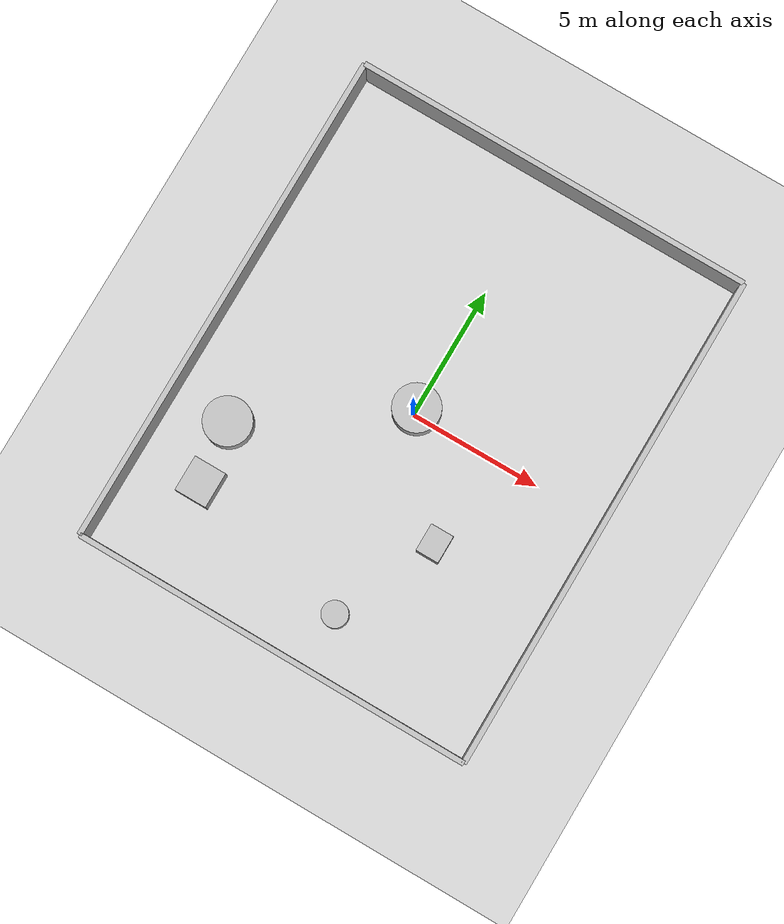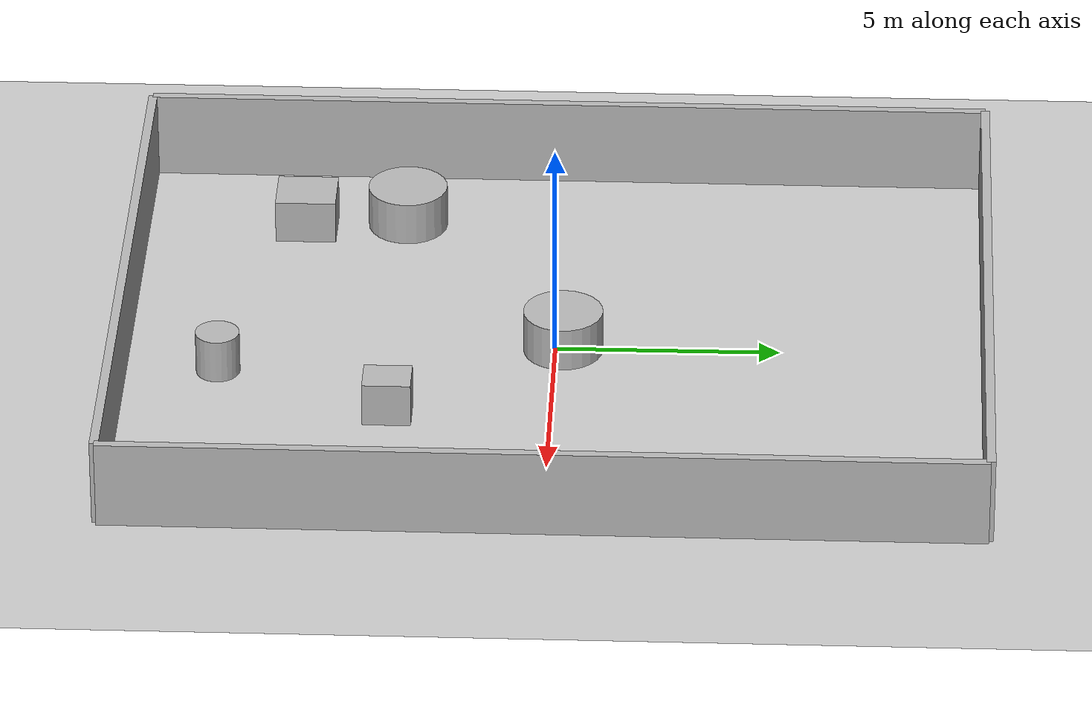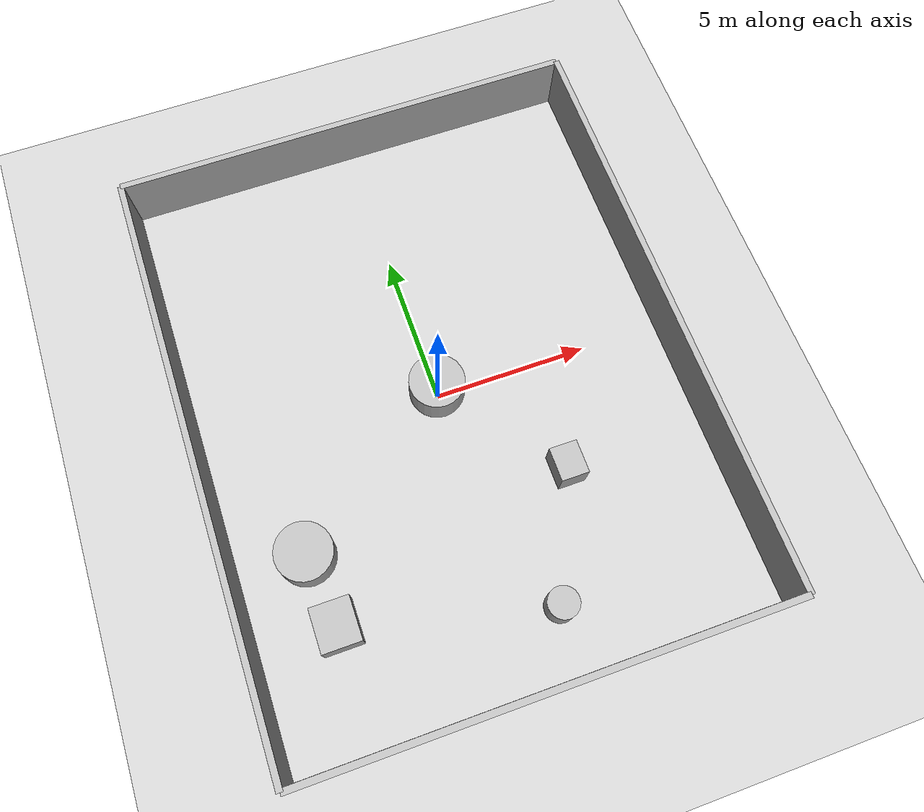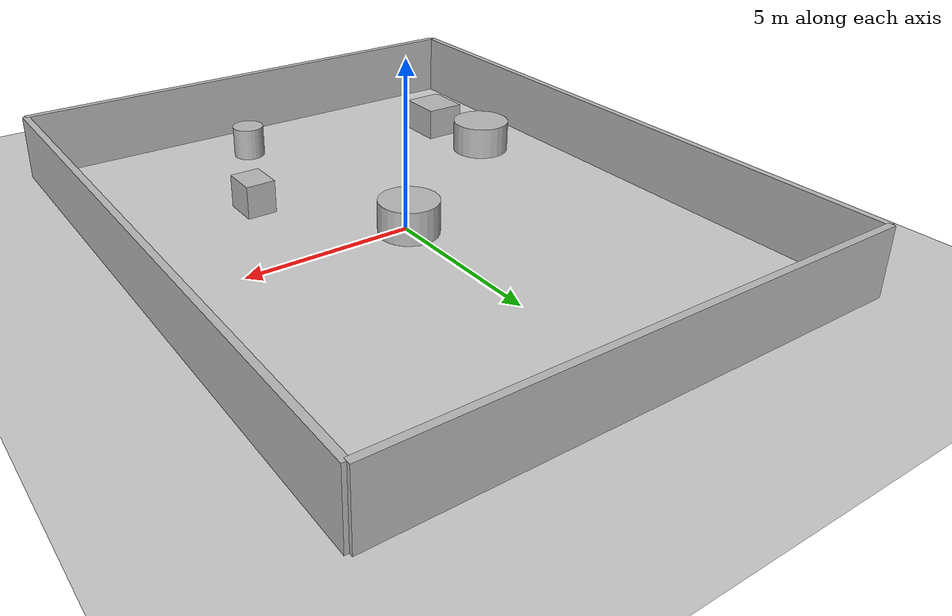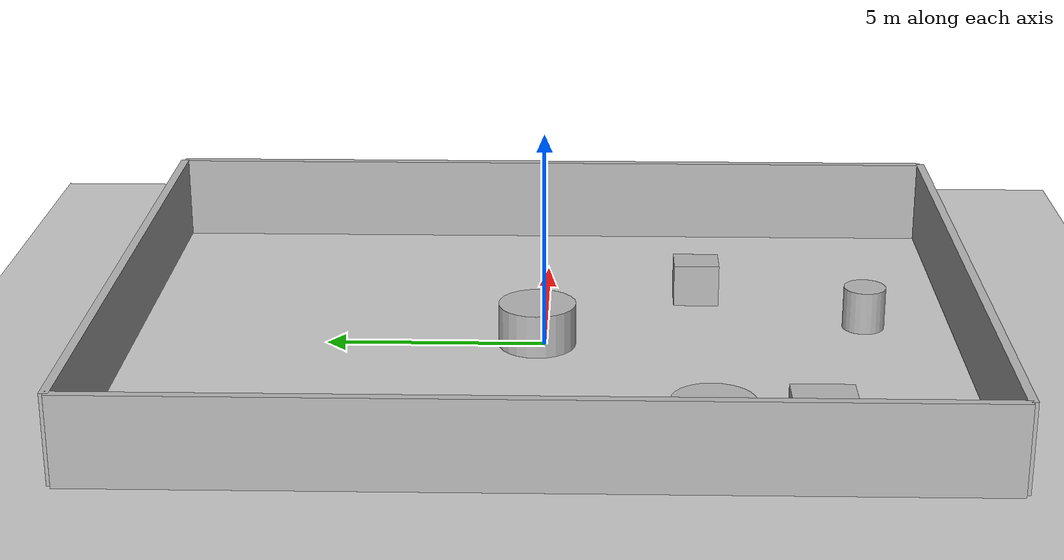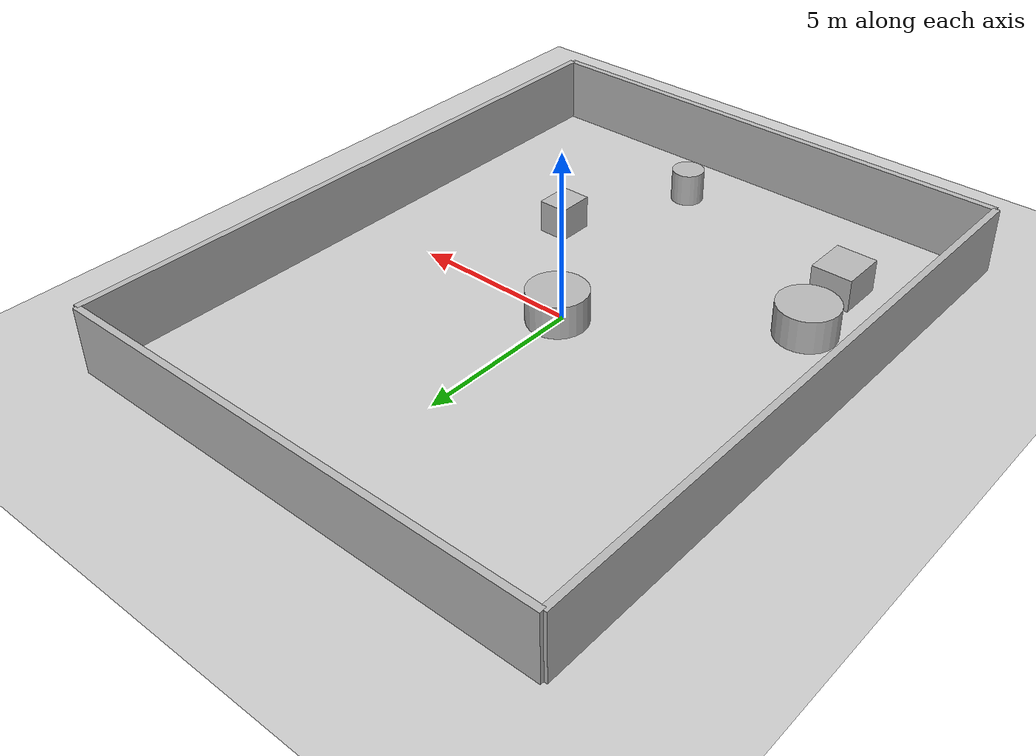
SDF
<?xml version="1.0"?>
<sdf version="1.6">
  <world name="env_5">

    <include><uri>model://ground_plane</uri></include>
    <include><uri>model://sun</uri></include>

    <!-- WALLS -->
    <model name="wall_north"><static>true</static><pose>0 9.577049797347966 1 0 0 0</pose>
      <link name="link"><collision name="collision">
        <geometry><box><size>15.286042189366492 0.2 2</size></box></geometry>
      </collision><visual name="visual">
        <geometry><box><size>15.286042189366492 0.2 2</size></box></geometry>
      </visual></link>
    </model>

    <model name="wall_south"><static>true</static><pose>0 -9.577049797347966 1 0 0 0</pose>
      <link name="link"><collision name="collision">
        <geometry><box><size>15.286042189366492 0.2 2</size></box></geometry>
      </collision><visual name="visual">
        <geometry><box><size>15.286042189366492 0.2 2</size></box></geometry>
      </visual></link>
    </model>

    <model name="wall_east"><static>true</static><pose>7.643021094683246 0 1 0 0 1.57</pose>
      <link name="link"><collision name="collision">
        <geometry><box><size>19.154099594695932 0.2 2</size></box></geometry>
      </collision><visual name="visual">
        <geometry><box><size>19.154099594695932 0.2 2</size></box></geometry>
      </visual></link>
    </model>

    <model name="wall_west"><static>true</static><pose>-7.643021094683246 0 1 0 0 1.57</pose>
      <link name="link"><collision name="collision">
        <geometry><box><size>19.154099594695932 0.2 2</size></box></geometry>
      </collision><visual name="visual">
        <geometry><box><size>19.154099594695932 0.2 2</size></box></geometry>
      </visual></link>
    </model>

    <!-- SENSOR -->

    <model name="lidar_sensor">
      <static>true</static>
      <pose>4.159849853889685 -4.7008737363862485 0.4 0 0 0</pose>
      <link name="link">
        <sensor name="lidar" type="ray">
          <pose>0 0 0 0 0 0</pose>
          <visualize>true</visualize>
          <always_on>true</always_on>
          <update_rate>10</update_rate>
          <ray>
            <scan><horizontal>
              <samples>180</samples>
              <resolution>1</resolution>
              <min_angle>-3.14159</min_angle>
              <max_angle>3.14159</max_angle>
            </horizontal></scan>
            <range><min>0.15</min><max>20.0</max><resolution>0.01</resolution></range>
          </ray>
          <plugin name="lidar_plugin" filename="liblidar_plugin.so"/>
        </sensor>
      </link>
    </model>

    <!-- OBSTACLES -->

    <model name="obstacle_0">
      <static>true</static>
      <pose>1.2368877146975388 -7.441968809691419 0.5 0 0 0</pose>
      <link name="link">
        <collision name="collision">
          <geometry><cylinder><radius>0.49</radius><length>1.0</length></cylinder></geometry>
        </collision>
        <visual name="visual">
          <geometry><cylinder><radius>0.49</radius><length>1.0</length></cylinder></geometry>
        </visual>
      </link>
    </model>

    <model name="obstacle_1">
      <static>true</static>
      <pose>2.9628540554579006 -3.580303536747053 0.5 0 0 0</pose>
      <link name="link">
        <collision name="collision">
          <geometry><box><size>0.89 1.07 1.0</size></box></geometry>
        </collision>
        <visual name="visual">
          <geometry><box><size>0.89 1.07 1.0</size></box></geometry>
        </visual>
      </link>
    </model>

    <model name="obstacle_2">
      <static>true</static>
      <pose>-5.409151495680982 -3.5789526093109565 0.5 0 0 0</pose>
      <link name="link">
        <collision name="collision">
          <geometry><cylinder><radius>0.9</radius><length>1.0</length></cylinder></geometry>
        </collision>
        <visual name="visual">
          <geometry><cylinder><radius>0.9</radius><length>1.0</length></cylinder></geometry>
        </visual>
      </link>
    </model>

    <model name="obstacle_3">
      <static>true</static>
      <pose>-5.135057724786626 -5.874585580217113 0.5 0 0 0</pose>
      <link name="link">
        <collision name="collision">
          <geometry><box><size>1.24 1.37 1.0</size></box></geometry>
        </collision>
        <visual name="visual">
          <geometry><box><size>1.24 1.37 1.0</size></box></geometry>
        </visual>
      </link>
    </model>

    <model name="obstacle_4">
      <static>true</static>
      <pose>0.025184867500803954 0.17414420291876453 0.5 0 0 0</pose>
      <link name="link">
        <collision name="collision">
          <geometry><cylinder><radius>0.89</radius><length>1.0</length></cylinder></geometry>
        </collision>
        <visual name="visual">
          <geometry><cylinder><radius>0.89</radius><length>1.0</length></cylinder></geometry>
        </visual>
      </link>
    </model>

  </world>
</sdf>
